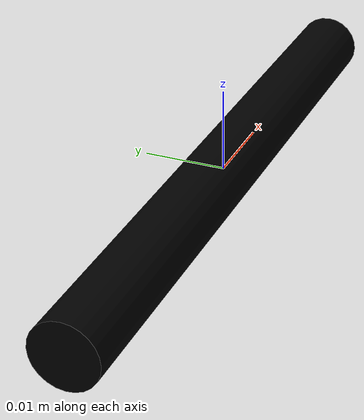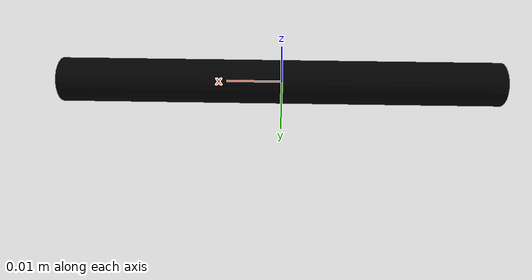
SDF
<?xml version="1.0"?>
<sdf version="1.6">
  <model name="airspeed">
    <link name="airspeed_link">
      <pose>0 0 0 0 0 0</pose>
      <inertial>
        <pose>0 0 0 0 0 0</pose>
        <mass>0.015</mass>
        <inertia>
          <ixx>1e-05</ixx>
          <ixy>0</ixy>
          <ixz>0</ixz>
          <iyy>1e-05</iyy>
          <iyz>0</iyz>
          <izz>1e-05</izz>
        </inertia>
      </inertial>
      <visual name="visual">
        <pose>0 0 0 0 1.57 0</pose>
        <geometry>
          <cylinder>
            <radius>0.004</radius>
            <length>0.08</length>
          </cylinder>
        </geometry> <!-- Black -->
        <material>
          <diffuse>0.0 0.0 0.0</diffuse>
          <specular>0.5 0.5 0.5</specular>
        </material>
      </visual>
      <sensor name="air_speed" type="air_speed">
        <gz_frame_id>airspeed_link</gz_frame_id>
        <pose>0 0 0 0 0 0</pose>
        <update_rate>5.0</update_rate>
        <always_on>1</always_on>
        <visualize>false</visualize>
        <air_speed>
          <pressure>
            <noise type="gaussian">
              <mean>0</mean>
              <stddev>0.01</stddev>
            </noise>
          </pressure>
        </air_speed>
      </sensor>
    </link>
  </model>
</sdf>
